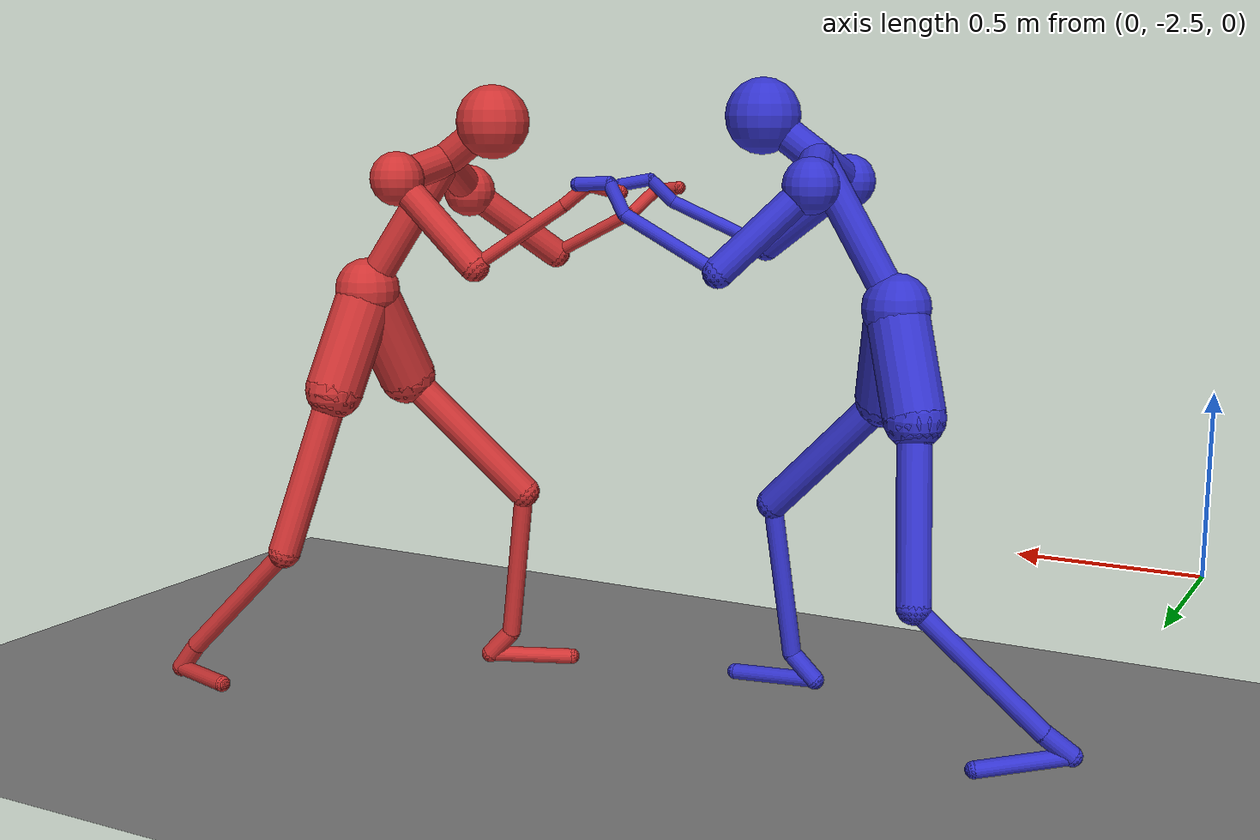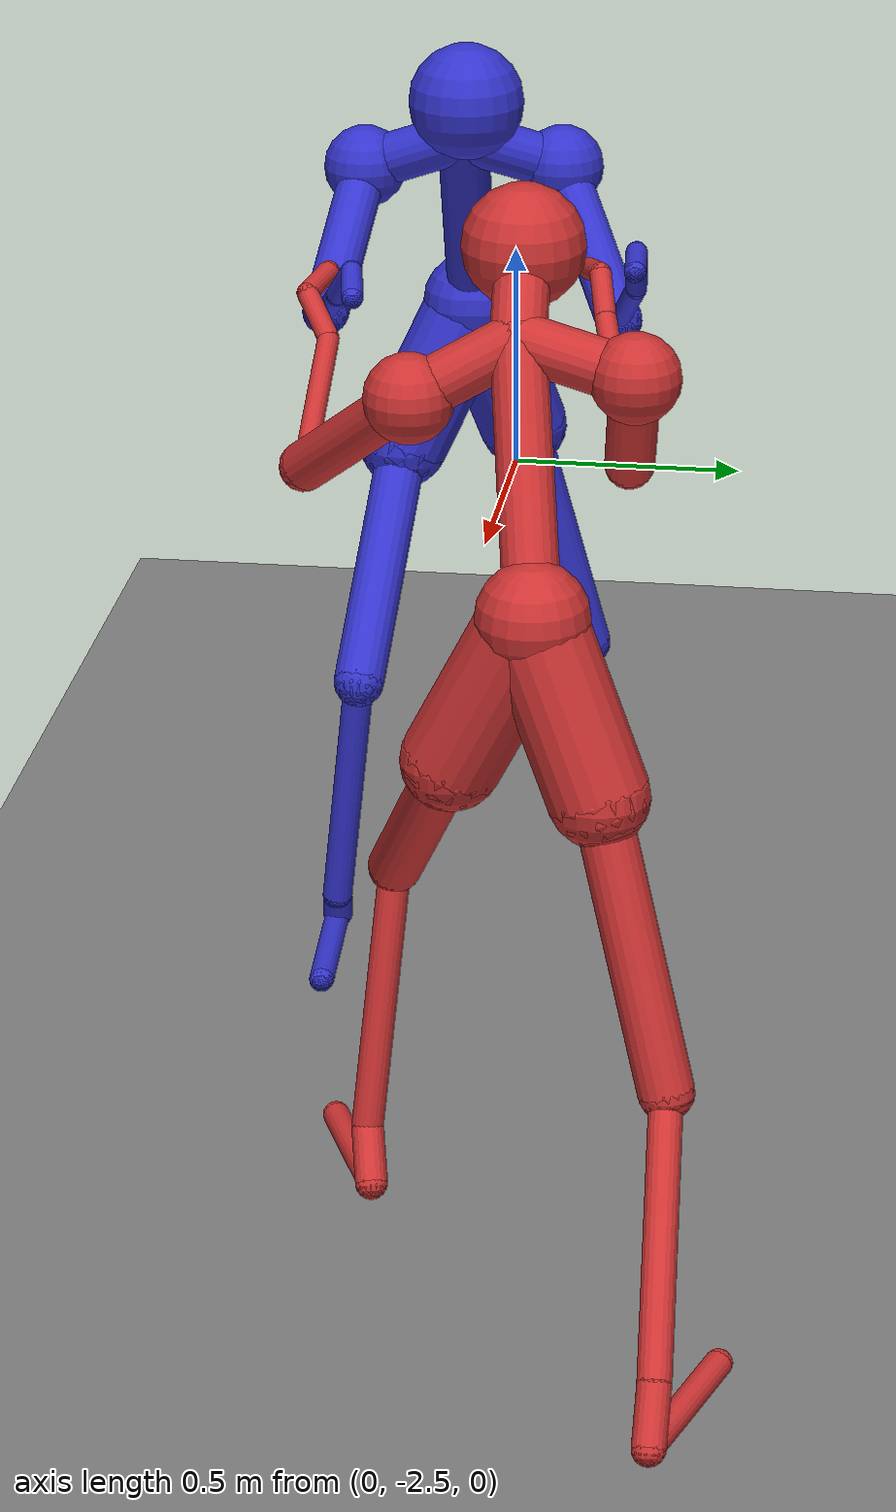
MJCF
<?xml version='1.0' encoding='utf-8'?>
<mujoco model="bjj_scene"><compiler angle="radian" coordinate="local" /><option timestep="0.00005" gravity="0 0 -9.81" /><visual><rgba haze="0.15 0.25 0.35 1" /></visual><default><joint armature="0.01" damping="0.1" limited="true" /><geom contype="1" conaffinity="1" friction="1 0.5 0.5" margin="0.001" /></default><asset><material name="red" rgba="0.8 0.2 0.2 1" /><material name="blue" rgba="0.2 0.2 0.8 1" /><material name="mat_ground" rgba="0.5 0.5 0.5 1" /></asset><worldbody><light directional="true" pos="0 0 3" dir="0 0 -1" /><geom name="ground" type="plane" pos="0 0 -0.6176" size="5 5 0.1" material="mat_ground" condim="3" /><body name="player1_Core" pos="2.4768 -2.1348 0.6780"><geom type="sphere" size="0.1" material="red" /><freejoint name="player1_root" /><geom type="capsule" fromto="0 0 0 -0.0360 -0.1464 -0.2868" size="0.0900" material="red" /><body name="player1_LeftHip" pos="-0.0360 -0.1464 -0.2868"><geom type="sphere" size="0.09" material="red" /><joint name="player1_LeftHip_joint" type="ball" limited="false" damping="0.5" /><geom type="capsule" fromto="0 0 0 -0.3384 -0.1572 -0.3768" size="0.0500" material="red" /><body name="player1_LeftKnee" pos="-0.3384 -0.1572 -0.3768"><geom type="sphere" size="0.05" material="red" /><joint name="player1_LeftKnee_joint" type="hinge" axis="0 1 0" limited="true" range="-2.3 0" damping="0.5" /><geom type="capsule" fromto="0 0 0 0.0852 -0.0456 -0.4980" size="0.0300" material="red" /><body name="player1_LeftAnkle" pos="0.0852 -0.0456 -0.4980"><geom type="sphere" size="0.03" material="red" /><joint name="player1_LeftAnkle_joint" type="hinge" axis="1 0 0" limited="false" damping="0.5" /><geom type="capsule" fromto="0 0 0 0.0720 0.0180 -0.0804" size="0.0300" material="red" /><body name="player1_LeftHeel" pos="0.0720 0.0180 -0.0804"><geom type="sphere" size="0.03" material="red" /><joint name="player1_LeftHeel_joint" type="hinge" axis="1 0 0" limited="false" damping="0.5" /><geom type="capsule" fromto="0 0 0 -0.2520 -0.1092 -0.0024" size="0.0250" material="red" /><body name="player1_LeftToe" pos="-0.2520 -0.1092 -0.0024"><geom type="sphere" size="0.025" material="red" /><joint name="player1_LeftToe_joint" type="hinge" axis="1 0 0" limited="false" damping="0.5" /></body></body></body></body></body><geom type="capsule" fromto="0 0 0 0.0480 0.1188 -0.3012" size="0.0900" material="red" /><body name="player1_RightHip" pos="0.0480 0.1188 -0.3012"><geom type="sphere" size="0.09" material="red" /><joint name="player1_RightHip_joint" type="ball" limited="false" damping="0.5" /><geom type="capsule" fromto="0 0 0 0.1116 0.1320 -0.5016" size="0.0500" material="red" /><body name="player1_RightKnee" pos="0.1116 0.1320 -0.5016"><geom type="sphere" size="0.05" material="red" /><joint name="player1_RightKnee_joint" type="hinge" axis="0 1 0" limited="true" range="-2.3 0" damping="0.5" /><geom type="capsule" fromto="0 0 0 0.3624 0.0216 -0.3540" size="0.0300" material="red" /><body name="player1_RightAnkle" pos="0.3624 0.0216 -0.3540"><geom type="sphere" size="0.03" material="red" /><joint name="player1_RightAnkle_joint" type="hinge" axis="1 0 0" limited="false" damping="0.5" /><geom type="capsule" fromto="0 0 0 0.0708 -0.0012 -0.0852" size="0.0300" material="red" /><body name="player1_RightHeel" pos="0.0708 -0.0012 -0.0852"><geom type="sphere" size="0.03" material="red" /><joint name="player1_RightHeel_joint" type="hinge" axis="1 0 0" limited="false" damping="0.5" /><geom type="capsule" fromto="0 0 0 -0.2568 0.0924 0.0144" size="0.0250" material="red" /><body name="player1_RightToe" pos="-0.2568 0.0924 0.0144"><geom type="sphere" size="0.025" material="red" /><joint name="player1_RightToe_joint" type="hinge" axis="1 0 0" limited="false" damping="0.5" /></body></body></body></body></body><geom type="capsule" fromto="0 0 0 -0.2616 -0.0588 0.4008" size="0.0500" material="red" /><body name="player1_Neck" pos="-0.2616 -0.0588 0.4008"><geom type="sphere" size="0.05" material="red" /><joint name="player1_Neck_joint" type="hinge" axis="1 0 0" limited="false" damping="0.5" /><geom type="capsule" fromto="0 0 0 -0.1644 -0.0120 0.1152" size="0.0500" material="red" /><body name="player1_Head" pos="-0.1644 -0.0120 0.1152"><geom type="sphere" size="0.11" material="red" /><joint name="player1_Head_joint" type="hinge" axis="1 0 0" limited="false" damping="0.5" /></body><geom type="capsule" fromto="0 0 0 0.0384 -0.1836 -0.0996" size="0.0500" material="red" /><body name="player1_LeftShoulder" pos="0.0384 -0.1836 -0.0996"><geom type="sphere" size="0.08" material="red" /><joint name="player1_LeftShoulder_joint" type="ball" limited="false" damping="0.5" /><geom type="capsule" fromto="0 0 0 -0.1836 -0.2184 -0.2052" size="0.0450" material="red" /><body name="player1_LeftElbow" pos="-0.1836 -0.2184 -0.2052"><geom type="sphere" size="0.045" material="red" /><joint name="player1_LeftElbow_joint" type="hinge" axis="0 1 0" limited="true" range="-2.3 0" damping="0.5" /><geom type="capsule" fromto="0 0 0 -0.2808 -0.0024 0.1404" size="0.0200" material="red" /><body name="player1_LeftWrist" pos="-0.2808 -0.0024 0.1404"><geom type="sphere" size="0.02" material="red" /><joint name="player1_LeftWrist_joint" type="hinge" axis="1 0 0" limited="false" damping="0.5" /><geom type="capsule" fromto="0 0 0 -0.0552 -0.0468 0.0660" size="0.0200" material="red" /><body name="player1_LeftHand" pos="-0.0552 -0.0468 0.0660"><geom type="sphere" size="0.02" material="red" /><joint name="player1_LeftHand_joint" type="hinge" axis="1 0 0" limited="false" damping="0.5" /><geom type="capsule" fromto="0 0 0 -0.0936 0.0228 0.0108" size="0.0200" material="red" /><body name="player1_LeftFingers" pos="-0.0936 0.0228 0.0108"><geom type="sphere" size="0.02" material="red" /><joint name="player1_LeftFingers_joint" type="hinge" axis="1 0 0" limited="false" damping="0.5" /></body></body></body></body></body><geom type="capsule" fromto="0 0 0 0.0312 0.2052 -0.0480" size="0.0500" material="red" /><body name="player1_RightShoulder" pos="0.0312 0.2052 -0.0480"><geom type="sphere" size="0.08" material="red" /><joint name="player1_RightShoulder_joint" type="ball" limited="false" damping="0.5" /><geom type="capsule" fromto="0 0 0 -0.2424 -0.0360 -0.2496" size="0.0450" material="red" /><body name="player1_RightElbow" pos="-0.2424 -0.0360 -0.2496"><geom type="sphere" size="0.045" material="red" /><joint name="player1_RightElbow_joint" type="hinge" axis="0 1 0" limited="true" range="-2.3 0" damping="0.5" /><geom type="capsule" fromto="0 0 0 -0.2604 -0.0744 0.1800" size="0.0200" material="red" /><body name="player1_RightWrist" pos="-0.2604 -0.0744 0.1800"><geom type="sphere" size="0.02" material="red" /><joint name="player1_RightWrist_joint" type="hinge" axis="1 0 0" limited="false" damping="0.5" /><geom type="capsule" fromto="0 0 0 -0.0720 -0.0180 0.0588" size="0.0200" material="red" /><body name="player1_RightHand" pos="-0.0720 -0.0180 0.0588"><geom type="sphere" size="0.02" material="red" /><joint name="player1_RightHand_joint" type="hinge" axis="1 0 0" limited="false" damping="0.5" /><geom type="capsule" fromto="0 0 0 -0.0864 -0.0324 -0.0204" size="0.0200" material="red" /><body name="player1_RightFingers" pos="-0.0864 -0.0324 -0.0204"><geom type="sphere" size="0.02" material="red" /><joint name="player1_RightFingers_joint" type="hinge" axis="1 0 0" limited="false" damping="0.5" /></body></body></body></body></body></body></body><body name="player2_Core" pos="0.8700 -2.4684 0.6780"><geom type="sphere" size="0.1" material="blue" /><freejoint name="player2_root" /><geom type="capsule" fromto="0 0 0 -0.0936 0.0888 -0.2928" size="0.0900" material="blue" /><body name="player2_LeftHip" pos="-0.0936 0.0888 -0.2928"><geom type="sphere" size="0.09" material="blue" /><joint name="player2_LeftHip_joint" type="ball" limited="false" damping="0.5" /><geom type="capsule" fromto="0 0 0 -0.0576 0.1260 -0.5076" size="0.0500" material="blue" /><body name="player2_LeftKnee" pos="-0.0576 0.1260 -0.5076"><geom type="sphere" size="0.05" material="blue" /><joint name="player2_LeftKnee_joint" type="hinge" axis="0 1 0" limited="true" range="-2.3 0" damping="0.5" /><geom type="capsule" fromto="0 0 0 -0.3432 -0.1224 -0.3456" size="0.0300" material="blue" /><body name="player2_LeftAnkle" pos="-0.3432 -0.1224 -0.3456"><geom type="sphere" size="0.03" material="blue" /><joint name="player2_LeftAnkle_joint" type="hinge" axis="1 0 0" limited="false" damping="0.5" /><geom type="capsule" fromto="0 0 0 -0.0756 -0.0348 -0.0648" size="0.0300" material="blue" /><body name="player2_LeftHeel" pos="-0.0756 -0.0348 -0.0648"><geom type="sphere" size="0.03" material="blue" /><joint name="player2_LeftHeel_joint" type="hinge" axis="1 0 0" limited="false" damping="0.5" /><geom type="capsule" fromto="0 0 0 0.2352 0.1428 -0.0348" size="0.0250" material="blue" /><body name="player2_LeftToe" pos="0.2352 0.1428 -0.0348"><geom type="sphere" size="0.025" material="blue" /><joint name="player2_LeftToe_joint" type="hinge" axis="1 0 0" limited="false" damping="0.5" /></body></body></body></body></body><geom type="capsule" fromto="0 0 0 0.0732 -0.1332 -0.2832" size="0.0900" material="blue" /><body name="player2_RightHip" pos="0.0732 -0.1332 -0.2832"><geom type="sphere" size="0.09" material="blue" /><joint name="player2_RightHip_joint" type="ball" limited="false" damping="0.5" /><geom type="capsule" fromto="0 0 0 0.3720 -0.0360 -0.3696" size="0.0500" material="blue" /><body name="player2_RightKnee" pos="0.3720 -0.0360 -0.3696"><geom type="sphere" size="0.05" material="blue" /><joint name="player2_RightKnee_joint" type="hinge" axis="0 1 0" limited="true" range="-2.3 0" damping="0.5" /><geom type="capsule" fromto="0 0 0 -0.0480 -0.0612 -0.4992" size="0.0300" material="blue" /><body name="player2_RightAnkle" pos="-0.0480 -0.0612 -0.4992"><geom type="sphere" size="0.03" material="blue" /><joint name="player2_RightAnkle_joint" type="hinge" axis="1 0 0" limited="false" damping="0.5" /><geom type="capsule" fromto="0 0 0 -0.0744 -0.0132 -0.0804" size="0.0300" material="blue" /><body name="player2_RightHeel" pos="-0.0744 -0.0132 -0.0804"><geom type="sphere" size="0.03" material="blue" /><joint name="player2_RightHeel_joint" type="hinge" axis="1 0 0" limited="false" damping="0.5" /><geom type="capsule" fromto="0 0 0 0.2724 0.0132 -0.0120" size="0.0250" material="blue" /><body name="player2_RightToe" pos="0.2724 0.0132 -0.0120"><geom type="sphere" size="0.025" material="blue" /><joint name="player2_RightToe_joint" type="hinge" axis="1 0 0" limited="false" damping="0.5" /></body></body></body></body></body><geom type="capsule" fromto="0 0 0 0.2436 0.0192 0.4176" size="0.0500" material="blue" /><body name="player2_Neck" pos="0.2436 0.0192 0.4176"><geom type="sphere" size="0.05" material="blue" /><joint name="player2_Neck_joint" type="hinge" axis="1 0 0" limited="false" damping="0.5" /><geom type="capsule" fromto="0 0 0 0.1560 0.0300 0.1176" size="0.0500" material="blue" /><body name="player2_Head" pos="0.1560 0.0300 0.1176"><geom type="sphere" size="0.11" material="blue" /><joint name="player2_Head_joint" type="hinge" axis="1 0 0" limited="false" damping="0.5" /></body><geom type="capsule" fromto="0 0 0 -0.0600 0.1860 -0.0696" size="0.0500" material="blue" /><body name="player2_LeftShoulder" pos="-0.0600 0.1860 -0.0696"><geom type="sphere" size="0.08" material="blue" /><joint name="player2_LeftShoulder_joint" type="ball" limited="false" damping="0.5" /><geom type="capsule" fromto="0 0 0 0.2136 0.1356 -0.2364" size="0.0450" material="blue" /><body name="player2_LeftElbow" pos="0.2136 0.1356 -0.2364"><geom type="sphere" size="0.045" material="blue" /><joint name="player2_LeftElbow_joint" type="hinge" axis="0 1 0" limited="true" range="-2.3 0" damping="0.5" /><geom type="capsule" fromto="0 0 0 0.2616 0.0612 0.1548" size="0.0200" material="blue" /><body name="player2_LeftWrist" pos="0.2616 0.0612 0.1548"><geom type="sphere" size="0.02" material="blue" /><joint name="player2_LeftWrist_joint" type="hinge" axis="1 0 0" limited="false" damping="0.5" /><geom type="capsule" fromto="0 0 0 0.0444 0.0048 0.0852" size="0.0200" material="blue" /><body name="player2_LeftHand" pos="0.0444 0.0048 0.0852"><geom type="sphere" size="0.02" material="blue" /><joint name="player2_LeftHand_joint" type="hinge" axis="1 0 0" limited="false" damping="0.5" /><geom type="capsule" fromto="0 0 0 0.0984 0.0084 -0.0048" size="0.0200" material="blue" /><body name="player2_LeftFingers" pos="0.0984 0.0084 -0.0048"><geom type="sphere" size="0.02" material="blue" /><joint name="player2_LeftFingers_joint" type="hinge" axis="1 0 0" limited="false" damping="0.5" /></body></body></body></body></body><geom type="capsule" fromto="0 0 0 -0.0216 -0.1956 -0.0732" size="0.0500" material="blue" /><body name="player2_RightShoulder" pos="-0.0216 -0.1956 -0.0732"><geom type="sphere" size="0.08" material="blue" /><joint name="player2_RightShoulder_joint" type="ball" limited="false" damping="0.5" /><geom type="capsule" fromto="0 0 0 0.2772 -0.0336 -0.2040" size="0.0450" material="blue" /><body name="player2_RightElbow" pos="0.2772 -0.0336 -0.2040"><geom type="sphere" size="0.045" material="blue" /><joint name="player2_RightElbow_joint" type="hinge" axis="0 1 0" limited="true" range="-2.3 0" damping="0.5" /><geom type="capsule" fromto="0 0 0 0.2844 0.0732 0.1320" size="0.0200" material="blue" /><body name="player2_RightWrist" pos="0.2844 0.0732 0.1320"><geom type="sphere" size="0.02" material="blue" /><joint name="player2_RightWrist_joint" type="hinge" axis="1 0 0" limited="false" damping="0.5" /><geom type="capsule" fromto="0 0 0 0.0576 0.0384 0.0672" size="0.0200" material="blue" /><body name="player2_RightHand" pos="0.0576 0.0384 0.0672"><geom type="sphere" size="0.02" material="blue" /><joint name="player2_RightHand_joint" type="hinge" axis="1 0 0" limited="false" damping="0.5" /><geom type="capsule" fromto="0 0 0 0.0960 0.0168 -0.0180" size="0.0200" material="blue" /><body name="player2_RightFingers" pos="0.0960 0.0168 -0.0180"><geom type="sphere" size="0.02" material="blue" /><joint name="player2_RightFingers_joint" type="hinge" axis="1 0 0" limited="false" damping="0.5" /></body></body></body></body></body></body></body></worldbody><actuator><position name="player1_LeftHip_joint_act" joint="player1_LeftHip_joint" kp="50" /><position name="player1_LeftKnee_joint_act" joint="player1_LeftKnee_joint" kp="50" /><position name="player1_LeftAnkle_joint_act" joint="player1_LeftAnkle_joint" kp="50" /><position name="player1_LeftHeel_joint_act" joint="player1_LeftHeel_joint" kp="50" /><position name="player1_LeftToe_joint_act" joint="player1_LeftToe_joint" kp="50" /><position name="player1_RightHip_joint_act" joint="player1_RightHip_joint" kp="50" /><position name="player1_RightKnee_joint_act" joint="player1_RightKnee_joint" kp="50" /><position name="player1_RightAnkle_joint_act" joint="player1_RightAnkle_joint" kp="50" /><position name="player1_RightHeel_joint_act" joint="player1_RightHeel_joint" kp="50" /><position name="player1_RightToe_joint_act" joint="player1_RightToe_joint" kp="50" /><position name="player1_Neck_joint_act" joint="player1_Neck_joint" kp="50" /><position name="player1_Head_joint_act" joint="player1_Head_joint" kp="50" /><position name="player1_LeftShoulder_joint_act" joint="player1_LeftShoulder_joint" kp="50" /><position name="player1_LeftElbow_joint_act" joint="player1_LeftElbow_joint" kp="50" /><position name="player1_LeftWrist_joint_act" joint="player1_LeftWrist_joint" kp="50" /><position name="player1_LeftHand_joint_act" joint="player1_LeftHand_joint" kp="50" /><position name="player1_LeftFingers_joint_act" joint="player1_LeftFingers_joint" kp="50" /><position name="player1_RightShoulder_joint_act" joint="player1_RightShoulder_joint" kp="50" /><position name="player1_RightElbow_joint_act" joint="player1_RightElbow_joint" kp="50" /><position name="player1_RightWrist_joint_act" joint="player1_RightWrist_joint" kp="50" /><position name="player1_RightHand_joint_act" joint="player1_RightHand_joint" kp="50" /><position name="player1_RightFingers_joint_act" joint="player1_RightFingers_joint" kp="50" /><position name="player2_LeftHip_joint_act" joint="player2_LeftHip_joint" kp="50" /><position name="player2_LeftKnee_joint_act" joint="player2_LeftKnee_joint" kp="50" /><position name="player2_LeftAnkle_joint_act" joint="player2_LeftAnkle_joint" kp="50" /><position name="player2_LeftHeel_joint_act" joint="player2_LeftHeel_joint" kp="50" /><position name="player2_LeftToe_joint_act" joint="player2_LeftToe_joint" kp="50" /><position name="player2_RightHip_joint_act" joint="player2_RightHip_joint" kp="50" /><position name="player2_RightKnee_joint_act" joint="player2_RightKnee_joint" kp="50" /><position name="player2_RightAnkle_joint_act" joint="player2_RightAnkle_joint" kp="50" /><position name="player2_RightHeel_joint_act" joint="player2_RightHeel_joint" kp="50" /><position name="player2_RightToe_joint_act" joint="player2_RightToe_joint" kp="50" /><position name="player2_Neck_joint_act" joint="player2_Neck_joint" kp="50" /><position name="player2_Head_joint_act" joint="player2_Head_joint" kp="50" /><position name="player2_LeftShoulder_joint_act" joint="player2_LeftShoulder_joint" kp="50" /><position name="player2_LeftElbow_joint_act" joint="player2_LeftElbow_joint" kp="50" /><position name="player2_LeftWrist_joint_act" joint="player2_LeftWrist_joint" kp="50" /><position name="player2_LeftHand_joint_act" joint="player2_LeftHand_joint" kp="50" /><position name="player2_LeftFingers_joint_act" joint="player2_LeftFingers_joint" kp="50" /><position name="player2_RightShoulder_joint_act" joint="player2_RightShoulder_joint" kp="50" /><position name="player2_RightElbow_joint_act" joint="player2_RightElbow_joint" kp="50" /><position name="player2_RightWrist_joint_act" joint="player2_RightWrist_joint" kp="50" /><position name="player2_RightHand_joint_act" joint="player2_RightHand_joint" kp="50" /><position name="player2_RightFingers_joint_act" joint="player2_RightFingers_joint" kp="50" /></actuator></mujoco>
